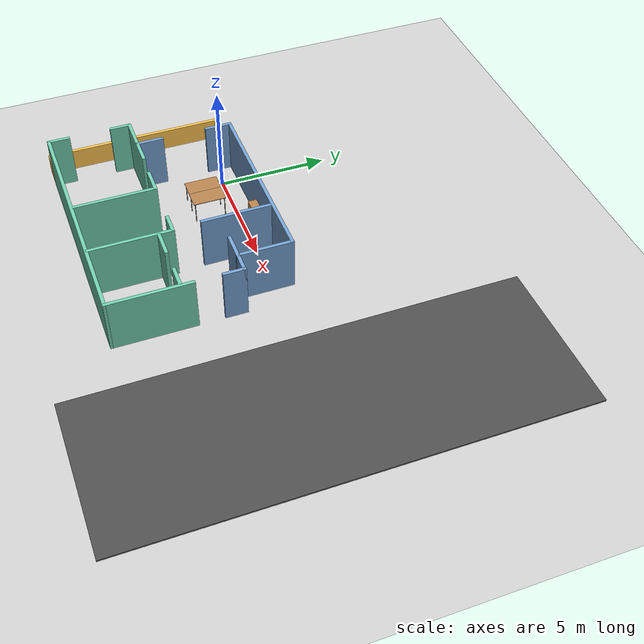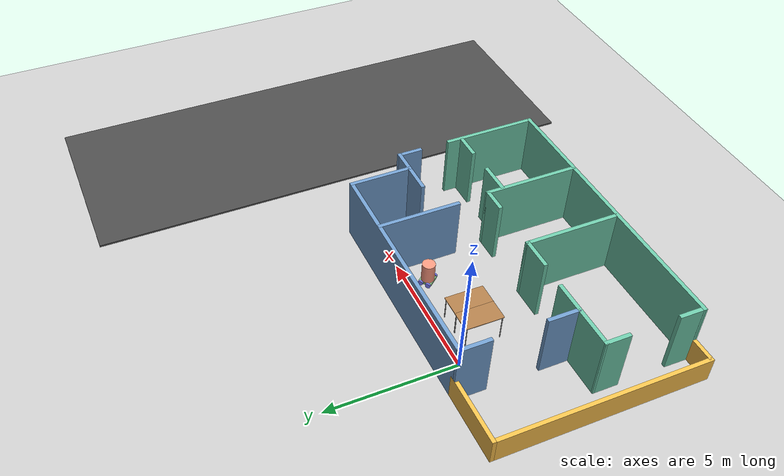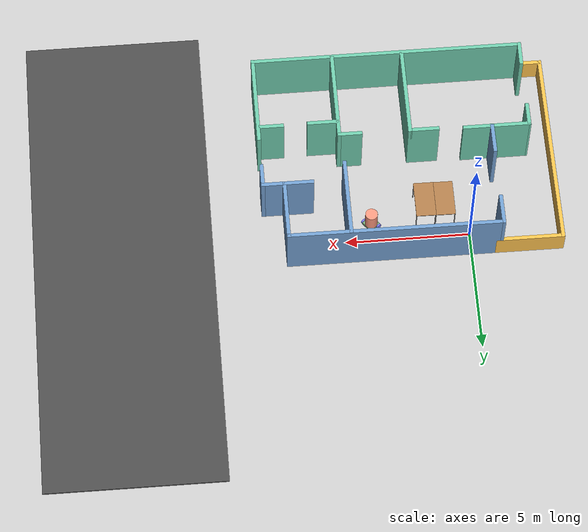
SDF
<sdf version="1.7">
 <world name="default">
  <model name="ground_plane">
   <static>1</static>
   <link name="link">
    <collision name="collision">
     <geometry><plane><normal>0 0 1</normal><size>100 100</size></plane></geometry>
     <surface>
      <contact><collide_bitmask>65535</collide_bitmask></contact>
      <friction><ode><mu>100</mu><mu2>50</mu2></ode></friction>
     </surface>
    </collision>
    <visual name="visual">
     <cast_shadows>0</cast_shadows>
     <geometry><plane><normal>0 0 1</normal><size>100 100</size></plane></geometry>
     <material>
      <script><uri>file://media/materials/scripts/gazebo.material</uri><name>Gazebo/Grey</name></script>
     </material>
    </visual>
   </link>
  </model>
  <model name="Flat">
   <pose>2.29093 -3.22948 0 0 -0 0</pose>
   <link name="Wall_0">
    <collision name="Wall_0_Collision">
     <geometry><box><size>8.5 0.15 2.5</size></box></geometry>
     <pose>0 0 1.25 0 -0 0</pose>
    </collision>
    <visual name="Wall_0_Visual">
     <pose>0 0 1.25 0 -0 0</pose>
     <geometry><box><size>8.5 0.15 2.5</size></box></geometry>
     <material>
      <script><uri>file://media/materials/scripts/gazebo.material</uri><name>Gazebo/Grey</name></script>
      <ambient>0.447059 0.623529 0.811765 1</ambient>
     </material>
     <meta><layer>0</layer></meta>
    </visual>
    <pose>0.870433 4.05105 0 0 -0 0</pose>
   </link>
   <link name="Wall_1">
    <collision name="Wall_1_Collision">
     <geometry><box><size>2.5 0.15 2.5</size></box></geometry>
     <pose>0 0 1.25 0 -0 0</pose>
    </collision>
    <visual name="Wall_1_Visual">
     <pose>0 0 1.25 0 -0 0</pose>
     <geometry><box><size>2.5 0.15 2.5</size></box></geometry>
     <material>
      <script><uri>file://media/materials/scripts/gazebo.material</uri><name>Gazebo/Grey</name></script>
      <ambient>0.447059 0.623529 0.811765 1</ambient>
     </material>
     <meta><layer>0</layer></meta>
    </visual>
    <pose>5.04543 2.87604 0 0 -0 -1.5708</pose>
   </link>
   <link name="Wall_14">
    <collision name="Wall_14_Collision">
     <geometry><box><size>3.75 0.15 2.5</size></box></geometry>
     <pose>0 0 1.25 0 -0 0</pose>
    </collision>
    <visual name="Wall_14_Visual">
     <pose>0 0 1.25 0 -0 0</pose>
     <geometry><box><size>3.75 0.15 2.5</size></box></geometry>
     <material>
      <script><uri>file://media/materials/scripts/gazebo.material</uri><name>Gazebo/Grey</name></script>
      <ambient>0.435294 0.796078 0.67451 1</ambient>
     </material>
     <meta><layer>0</layer></meta>
    </visual>
    <pose>5.90427 -2.22379 0 0 -0 -1.5708</pose>
   </link>
   <link name="Wall_15">
    <collision name="Wall_15_Collision">
     <geometry><box><size>11.0131 0.15 2.5</size></box></geometry>
     <pose>0 0 1.25 0 -0 0</pose>
    </collision>
    <visual name="Wall_15_Visual">
     <pose>0 0 1.25 0 -0 0</pose>
     <geometry><box><size>11.0131 0.15 2.5</size></box></geometry>
     <material>
      <script><uri>file://media/materials/scripts/gazebo.material</uri><name>Gazebo/Grey</name></script>
      <ambient>0.435294 0.796078 0.67451 1</ambient>
     </material>
     <meta><layer>0</layer></meta>
    </visual>
    <pose>0.472849 -4.03687 0 0 -0 -3.13918</pose>
   </link>
   <link name="Wall_16">
    <collision name="Wall_16_Collision">
     <geometry><box><size>1.02626 0.15 2.5</size></box></geometry>
     <pose>0 0 1.25 0 -0 0</pose>
    </collision>
    <visual name="Wall_16_Visual">
     <pose>0 0 1.25 0 -0 0</pose>
     <geometry><box><size>1.02626 0.15 2.5</size></box></geometry>
     <material>
      <script><uri>file://media/materials/scripts/gazebo.material</uri><name>Gazebo/Grey</name></script>
      <ambient>0.435294 0.796078 0.67451 1</ambient>
     </material>
     <meta><layer>0</layer></meta>
    </visual>
    <pose>-4.95215 -3.61187 0 0 -0 1.55615</pose>
   </link>
   <link name="Wall_18">
    <collision name="Wall_18_Collision">
     <geometry><box><size>0.992854 0.15 2.5</size></box></geometry>
     <pose>0 0 1.25 0 -0 0</pose>
    </collision>
    <visual name="Wall_18_Visual">
     <pose>0 0 1.25 0 -0 0</pose>
     <geometry><box><size>0.992854 0.15 2.5</size></box></geometry>
     <material>
      <script><uri>file://media/materials/scripts/gazebo.material</uri><name>Gazebo/Grey</name></script>
      <ambient>0.435294 0.796078 0.67451 1</ambient>
     </material>
     <meta><layer>0</layer></meta>
    </visual>
    <pose>-4.94342 -0.738786 0 0 -0 1.56763</pose>
   </link>
   <link name="Wall_19">
    <collision name="Wall_19_Collision">
     <geometry><box><size>2.74734 0.15 2.5</size></box></geometry>
     <pose>0 0 1.25 0 -0 0</pose>
    </collision>
    <visual name="Wall_19_Visual">
     <pose>0 0 1.25 0 -0 0</pose>
     <geometry><box><size>2.74734 0.15 2.5</size></box></geometry>
     <material>
      <script><uri>file://media/materials/scripts/gazebo.material</uri><name>Gazebo/Grey</name></script>
      <ambient>0.435294 0.796078 0.67451 1</ambient>
     </material>
     <meta><layer>0</layer></meta>
    </visual>
    <pose>-3.64342 -0.313786 0 0 -0 0.002753</pose>
   </link>
   <link name="Wall_2">
    <collision name="Wall_2_Collision">
     <geometry><box><size>1 0.15 2.5</size></box></geometry>
     <pose>0 0 1.25 0 -0 0</pose>
    </collision>
    <visual name="Wall_2_Visual">
     <pose>0 0 1.25 0 -0 0</pose>
     <geometry><box><size>1 0.15 2.5</size></box></geometry>
     <material>
      <script><uri>file://media/materials/scripts/gazebo.material</uri><name>Gazebo/Grey</name></script>
      <ambient>0.447059 0.623529 0.811765 1</ambient>
     </material>
     <meta><layer>0</layer></meta>
    </visual>
    <pose>5.47043 1.70104 0 0 -0 0</pose>
   </link>
   <link name="Wall_21">
    <collision name="Wall_21_Collision">
     <geometry><box><size>1.25 0.15 2.5</size></box></geometry>
     <pose>0 0 1.25 0 -0 0</pose>
    </collision>
    <visual name="Wall_21_Visual">
     <pose>0 0 1.25 0 -0 0</pose>
     <geometry><box><size>1.25 0.15 2.5</size></box></geometry>
     <material>
      <script><uri>file://media/materials/scripts/gazebo.material</uri><name>Gazebo/Grey</name></script>
      <ambient>0.435294 0.796078 0.67451 1</ambient>
     </material>
     <meta><layer>0</layer></meta>
    </visual>
    <pose>-0.699511 -0.358041 0 0 -0 0</pose>
   </link>
   <link name="Wall_22">
    <collision name="Wall_22_Collision">
     <geometry><box><size>3.75 0.15 2.5</size></box></geometry>
     <pose>0 0 1.25 0 -0 0</pose>
    </collision>
    <visual name="Wall_22_Visual">
     <pose>0 0 1.25 0 -0 0</pose>
     <geometry><box><size>3.75 0.15 2.5</size></box></geometry>
     <material>
      <script><uri>file://media/materials/scripts/gazebo.material</uri><name>Gazebo/Grey</name></script>
      <ambient>0.435294 0.796078 0.67451 1</ambient>
     </material>
     <meta><layer>0</layer></meta>
    </visual>
    <pose>-0.149511 -2.15804 0 0 -0 -1.5708</pose>
   </link>
   <link name="Wall_24">
    <collision name="Wall_24_Collision">
     <geometry><box><size>1 0.15 2.5</size></box></geometry>
     <pose>0 0 1.25 0 -0 0</pose>
    </collision>
    <visual name="Wall_24_Visual">
     <pose>0 0 1.25 0 -0 0</pose>
     <geometry><box><size>1 0.15 2.5</size></box></geometry>
     <material>
      <script><uri>file://media/materials/scripts/gazebo.material</uri><name>Gazebo/Grey</name></script>
      <ambient>0.435294 0.796078 0.67451 1</ambient>
     </material>
     <meta><layer>0</layer></meta>
    </visual>
    <pose>2.26581 -0.371191 0 0 -0 0</pose>
   </link>
   <link name="Wall_25">
    <collision name="Wall_25_Collision">
     <geometry><box><size>3.75 0.15 2.5</size></box></geometry>
     <pose>0 0 1.25 0 -0 0</pose>
    </collision>
    <visual name="Wall_25_Visual">
     <pose>0 0 1.25 0 -0 0</pose>
     <geometry><box><size>3.75 0.15 2.5</size></box></geometry>
     <material>
      <script><uri>file://media/materials/scripts/gazebo.material</uri><name>Gazebo/Grey</name></script>
      <ambient>0.435294 0.796078 0.67451 1</ambient>
     </material>
     <meta><layer>0</layer></meta>
    </visual>
    <pose>2.69082 -2.17119 0 0 -0 -1.5708</pose>
   </link>
   <link name="Wall_27">
    <collision name="Wall_27_Collision">
     <geometry><box><size>1.25 0.15 2.5</size></box></geometry>
     <pose>0 0 1.25 0 -0 0</pose>
    </collision>
    <visual name="Wall_27_Visual">
     <pose>0 0 1.25 0 -0 0</pose>
     <geometry><box><size>1.25 0.15 2.5</size></box></geometry>
     <material>
      <script><uri>file://media/materials/scripts/gazebo.material</uri><name>Gazebo/Grey</name></script>
      <ambient>0.435294 0.796078 0.67451 1</ambient>
     </material>
     <meta><layer>0</layer></meta>
    </visual>
    <pose>3.31134 -0.976106 0 0 -0 0</pose>
   </link>
   <link name="Wall_29">
    <collision name="Wall_29_Collision">
     <geometry><box><size>1 0.15 2.5</size></box></geometry>
     <pose>0 0 1.25 0 -0 0</pose>
    </collision>
    <visual name="Wall_29_Visual">
     <pose>0 0 1.25 0 -0 0</pose>
     <geometry><box><size>1 0.15 2.5</size></box></geometry>
     <material>
      <script><uri>file://media/materials/scripts/gazebo.material</uri><name>Gazebo/Grey</name></script>
      <ambient>0.435294 0.796078 0.67451 1</ambient>
     </material>
     <meta><layer>0</layer></meta>
    </visual>
    <pose>5.36929 -0.949805 0 0 -0 0</pose>
   </link>
   <link name="Wall_3">
    <collision name="Wall_3_Collision">
     <geometry><box><size>1 0.15 2.5</size></box></geometry>
     <pose>0 0 1.25 0 -0 0</pose>
    </collision>
    <visual name="Wall_3_Visual">
     <pose>0 0 1.25 0 -0 0</pose>
     <geometry><box><size>1 0.15 2.5</size></box></geometry>
     <material>
      <script><uri>file://media/materials/scripts/gazebo.material</uri><name>Gazebo/Grey</name></script>
      <ambient>0.447059 0.623529 0.811765 1</ambient>
     </material>
     <meta><layer>0</layer></meta>
    </visual>
    <pose>5.89543 1.27605 0 0 -0 -1.5708</pose>
   </link>
   <link name="Wall_33">
    <collision name="Wall_33_Collision">
     <geometry><box><size>3.25 0.15 2.5</size></box></geometry>
     <pose>0 0 1.25 0 -0 0</pose>
    </collision>
    <visual name="Wall_33_Visual">
     <pose>0 0 1.25 0 -0 0</pose>
     <geometry><box><size>3.25 0.15 2.5</size></box></geometry>
     <material>
      <script><uri>file://media/materials/scripts/gazebo.material</uri><name>Gazebo/Grey</name></script>
      <ambient>0.447059 0.623529 0.811765 1</ambient>
     </material>
     <meta><layer>0</layer></meta>
    </visual>
    <pose>2.59038 2.48417 0 0 -0 -1.5708</pose>
   </link>
   <link name="Wall_36">
    <collision name="Wall_36_Collision">
     <geometry><box><size>1.25 0.15 2.5</size></box></geometry>
     <pose>0 0 1.25 0 -0 0</pose>
    </collision>
    <visual name="Wall_36_Visual">
     <pose>0 0 1.25 0 -0 0</pose>
     <geometry><box><size>1.25 0.15 2.5</size></box></geometry>
     <material>
      <script><uri>file://media/materials/scripts/gazebo.material</uri><name>Gazebo/Grey</name></script>
      <ambient>0.447059 0.623529 0.811765 1</ambient>
     </material>
     <meta><layer>0</layer></meta>
    </visual>
    <pose>4.49558 1.70105 0 0 -0 3.14158</pose>
   </link>
   <link name="Wall_38">
    <collision name="Wall_38_Collision">
     <geometry><box><size>1.25 0.15 2.5</size></box></geometry>
     <pose>0 0 1.25 0 -0 0</pose>
    </collision>
    <visual name="Wall_38_Visual">
     <pose>0 0 1.25 0 -0 0</pose>
     <geometry><box><size>1.25 0.15 2.5</size></box></geometry>
     <material>
      <script><uri>file://media/materials/scripts/gazebo.material</uri><name>Gazebo/Grey</name></script>
      <ambient>0.447059 0.623529 0.811765 1</ambient>
     </material>
     <meta><layer>0</layer></meta>
    </visual>
    <pose>-3.43247 3.49732 0 0 -0 -1.5708</pose>
   </link>
   <link name="Wall_40">
    <collision name="Wall_40_Collision">
     <geometry><box><size>1.25 0.15 2.5</size></box></geometry>
     <pose>0 0 1.25 0 -0 0</pose>
    </collision>
    <visual name="Wall_40_Visual">
     <pose>0 0 1.25 0 -0 0</pose>
     <geometry><box><size>1.25 0.15 2.5</size></box></geometry>
     <material>
      <script><uri>file://media/materials/scripts/gazebo.material</uri><name>Gazebo/Grey</name></script>
      <ambient>0.447059 0.623529 0.811765 1</ambient>
     </material>
     <meta><layer>0</layer></meta>
    </visual>
    <pose>-3.44562 0.262338 0 0 -0 -1.5708</pose>
   </link>
   <link name="Wall_42">
    <collision name="Wall_42_Collision">
     <geometry><box><size>2.75 0.15 1</size></box></geometry>
     <pose>0 0 0.5 0 -0 0</pose>
    </collision>
    <visual name="Wall_42_Visual">
     <pose>0 0 0.5 0 -0 0</pose>
     <geometry><box><size>2.75 0.15 1</size></box></geometry>
     <material>
      <script><uri>file://media/materials/scripts/gazebo.material</uri><name>Gazebo/Grey</name></script>
      <ambient>1 0.764706 0.305882 1</ambient>
     </material>
     <meta><layer>0</layer></meta>
    </visual>
    <pose>-4.60457 4.05105 0 0 -0 -3.14159</pose>
   </link>
   <link name="Wall_43">
    <collision name="Wall_43_Collision">
     <geometry><box><size>8.25 0.15 1</size></box></geometry>
     <pose>0 0 0.5 0 -0 0</pose>
    </collision>
    <visual name="Wall_43_Visual">
     <pose>0 0 0.5 0 -0 0</pose>
     <geometry><box><size>8.25 0.15 1</size></box></geometry>
     <material>
      <script><uri>file://media/materials/scripts/gazebo.material</uri><name>Gazebo/Grey</name></script>
      <ambient>1 0.764706 0.305882 1</ambient>
     </material>
     <meta><layer>0</layer></meta>
    </visual>
    <pose>-5.90457 0.001045 0 0 -0 -1.5708</pose>
   </link>
   <link name="Wall_46">
    <collision name="Wall_46_Collision">
     <geometry><box><size>1.09576 0.15 1</size></box></geometry>
     <pose>0 0 0.5 0 -0 0</pose>
    </collision>
    <visual name="Wall_46_Visual">
     <pose>0 0 0.5 0 -0 0</pose>
     <geometry><box><size>1.09576 0.15 1</size></box></geometry>
     <material>
      <script><uri>file://media/materials/scripts/gazebo.material</uri><name>Gazebo/Grey</name></script>
      <ambient>1 0.764706 0.305882 1</ambient>
     </material>
     <meta><layer>0</layer></meta>
    </visual>
    <pose>-5.43157 -4.04946 0 0 -0 -0.001057</pose>
   </link>
   <static>1</static>
  </model>
  <model name="bookshelf">
   <static>1</static>
   <link name="link">
    <inertial><mass>1</mass></inertial>
    <collision name="back">
     <pose>0 0.005 0.6 0 -0 0</pose>
     <geometry><box><size>0.9 0.01 1.2</size></box></geometry>
    </collision>
    <visual name="visual1">
     <pose>0 0.005 0.6 0 -0 0</pose>
     <geometry><box><size>0.9 0.01 1.2</size></box></geometry>
     <material>
      <script><uri>file://media/materials/scripts/gazebo.material</uri><name>Gazebo/Wood</name></script>
     </material>
    </visual>
    <collision name="left_side">
     <pose>0.45 -0.195 0.6 0 -0 0</pose>
     <geometry><box><size>0.02 0.4 1.2</size></box></geometry>
    </collision>
    <visual name="visual2">
     <pose>0.45 -0.195 0.6 0 -0 0</pose>
     <geometry><box><size>0.02 0.4 1.2</size></box></geometry>
     <material>
      <script><uri>file://media/materials/scripts/gazebo.material</uri><name>Gazebo/Wood</name></script>
     </material>
    </visual>
    <collision name="right_side">
     <pose>-0.45 -0.195 0.6 0 -0 0</pose>
     <geometry><box><size>0.02 0.4 1.2</size></box></geometry>
    </collision>
    <visual name="visual3">
     <pose>-0.45 -0.195 0.6 0 -0 0</pose>
     <geometry><box><size>0.02 0.4 1.2</size></box></geometry>
     <material>
      <script><uri>file://media/materials/scripts/gazebo.material</uri><name>Gazebo/Wood</name></script>
     </material>
    </visual>
    <collision name="bottom">
     <pose>0 -0.195 0.03 0 -0 0</pose>
     <geometry><box><size>0.88 0.4 0.06</size></box></geometry>
    </collision>
    <visual name="visual4">
     <pose>0 -0.195 0.03 0 -0 0</pose>
     <geometry><box><size>0.88 0.4 0.06</size></box></geometry>
     <material>
      <script><uri>file://media/materials/scripts/gazebo.material</uri><name>Gazebo/Wood</name></script>
     </material>
    </visual>
    <collision name="top">
     <pose>0 -0.195 1.19 0 -0 0</pose>
     <geometry><box><size>0.88 0.4 0.02</size></box></geometry>
    </collision>
    <visual name="visual5">
     <pose>0 -0.195 1.19 0 -0 0</pose>
     <geometry><box><size>0.88 0.4 0.02</size></box></geometry>
     <material>
      <script><uri>file://media/materials/scripts/gazebo.material</uri><name>Gazebo/Wood</name></script>
     </material>
    </visual>
    <collision name="low_shelf">
     <pose>0 -0.195 0.43 0 -0 0</pose>
     <geometry><box><size>0.88 0.4 0.02</size></box></geometry>
    </collision>
    <visual name="visual6">
     <pose>0 -0.195 0.43 0 -0 0</pose>
     <geometry><box><size>0.88 0.4 0.02</size></box></geometry>
     <material>
      <script><uri>file://media/materials/scripts/gazebo.material</uri><name>Gazebo/Wood</name></script>
     </material>
    </visual>
    <collision name="high_shelf">
     <pose>0 -0.195 0.8 0 -0 0</pose>
     <geometry><box><size>0.88 0.4 0.02</size></box></geometry>
    </collision>
    <visual name="visual7">
     <pose>0 -0.195 0.8 0 -0 0</pose>
     <geometry><box><size>0.88 0.4 0.02</size></box></geometry>
     <material>
      <script><uri>file://media/materials/scripts/gazebo.material</uri><name>Gazebo/Wood</name></script>
     </material>
    </visual>
   </link>
   <pose>4.29732 0.722954 0 0 -0 0</pose>
  </model>
  <model name="table">
   <static>1</static>
   <link name="link">
    <collision name="surface">
     <pose>0 0 1 0 -0 0</pose>
     <geometry><box><size>1.5 0.8 0.03</size></box></geometry>
     <surface><friction><ode><mu>0.6</mu><mu2>0.6</mu2></ode></friction></surface>
    </collision>
    <visual name="visual1">
     <pose>0 0 1 0 -0 0</pose>
     <geometry><box><size>1.5 0.8 0.03</size></box></geometry>
     <material>
      <script><uri>file://media/materials/scripts/gazebo.material</uri><name>Gazebo/Wood</name></script>
     </material>
    </visual>
    <collision name="front_left_leg">
     <pose>0.68 0.38 0.5 0 -0 0</pose>
     <geometry><cylinder><radius>0.02</radius><length>1</length></cylinder></geometry>
    </collision>
    <visual name="front_left_leg">
     <pose>0.68 0.38 0.5 0 -0 0</pose>
     <geometry><cylinder><radius>0.02</radius><length>1</length></cylinder></geometry>
     <material>
      <script><uri>file://media/materials/scripts/gazebo.material</uri><name>Gazebo/Grey</name></script>
     </material>
    </visual>
    <collision name="front_right_leg">
     <pose>0.68 -0.38 0.5 0 -0 0</pose>
     <geometry><cylinder><radius>0.02</radius><length>1</length></cylinder></geometry>
    </collision>
    <visual name="front_right_leg">
     <pose>0.68 -0.38 0.5 0 -0 0</pose>
     <geometry><cylinder><radius>0.02</radius><length>1</length></cylinder></geometry>
     <material>
      <script><uri>file://media/materials/scripts/gazebo.material</uri><name>Gazebo/Grey</name></script>
     </material>
    </visual>
    <collision name="back_right_leg">
     <pose>-0.68 -0.38 0.5 0 -0 0</pose>
     <geometry><cylinder><radius>0.02</radius><length>1</length></cylinder></geometry>
    </collision>
    <visual name="back_right_leg">
     <pose>-0.68 -0.38 0.5 0 -0 0</pose>
     <geometry><cylinder><radius>0.02</radius><length>1</length></cylinder></geometry>
     <material>
      <script><uri>file://media/materials/scripts/gazebo.material</uri><name>Gazebo/Grey</name></script>
     </material>
    </visual>
    <collision name="back_left_leg">
     <pose>-0.68 0.38 0.5 0 -0 0</pose>
     <geometry><cylinder><radius>0.02</radius><length>1</length></cylinder></geometry>
    </collision>
    <visual name="back_left_leg">
     <pose>-0.68 0.38 0.5 0 -0 0</pose>
     <geometry><cylinder><radius>0.02</radius><length>1</length></cylinder></geometry>
     <material>
      <script><uri>file://media/materials/scripts/gazebo.material</uri><name>Gazebo/Grey</name></script>
     </material>
    </visual>
   </link>
   <pose>1.72625 -1.20385 0 0 0 -1.57665</pose>
  </model>
  <model name="asphalt_plane">
   <static>1</static>
   <link name="link">
    <collision name="collision"><geometry><box><size>7.18921 20 0.1</size></box></geometry></collision>
    <visual name="visual">
     <cast_shadows>0</cast_shadows>
     <geometry><box><size>7.18921 20 0.1</size></box></geometry>
     <material>
      <script>
       <uri>model://asphalt_plane/materials/scripts</uri>
       <uri>model://asphalt_plane/materials/textures</uri>
       <name>vrc/asphalt</name>
      </script>
     </material>
    </visual>
   </link>
   <pose>13.9071 -0.010648 0 0 -0 0</pose>
  </model>
  <model name="table_clone">
   <static>1</static>
   <link name="link">
    <collision name="surface">
     <pose>0 0 1 0 -0 0</pose>
     <geometry><box><size>1.5 0.8 0.03</size></box></geometry>
     <surface><friction><ode><mu>0.6</mu><mu2>0.6</mu2></ode></friction></surface>
    </collision>
    <visual name="visual1">
     <pose>0 0 1 0 -0 0</pose>
     <geometry><box><size>1.5 0.8 0.03</size></box></geometry>
     <material>
      <script><uri>file://media/materials/scripts/gazebo.material</uri><name>Gazebo/Wood</name></script>
     </material>
    </visual>
    <collision name="front_left_leg">
     <pose>0.68 0.38 0.5 0 -0 0</pose>
     <geometry><cylinder><radius>0.02</radius><length>1</length></cylinder></geometry>
    </collision>
    <visual name="front_left_leg">
     <pose>0.68 0.38 0.5 0 -0 0</pose>
     <geometry><cylinder><radius>0.02</radius><length>1</length></cylinder></geometry>
     <material>
      <script><uri>file://media/materials/scripts/gazebo.material</uri><name>Gazebo/Grey</name></script>
     </material>
    </visual>
    <collision name="front_right_leg">
     <pose>0.68 -0.38 0.5 0 -0 0</pose>
     <geometry><cylinder><radius>0.02</radius><length>1</length></cylinder></geometry>
    </collision>
    <visual name="front_right_leg">
     <pose>0.68 -0.38 0.5 0 -0 0</pose>
     <geometry><cylinder><radius>0.02</radius><length>1</length></cylinder></geometry>
     <material>
      <script><uri>file://media/materials/scripts/gazebo.material</uri><name>Gazebo/Grey</name></script>
     </material>
    </visual>
    <collision name="back_right_leg">
     <pose>-0.68 -0.38 0.5 0 -0 0</pose>
     <geometry><cylinder><radius>0.02</radius><length>1</length></cylinder></geometry>
    </collision>
    <visual name="back_right_leg">
     <pose>-0.68 -0.38 0.5 0 -0 0</pose>
     <geometry><cylinder><radius>0.02</radius><length>1</length></cylinder></geometry>
     <material>
      <script><uri>file://media/materials/scripts/gazebo.material</uri><name>Gazebo/Grey</name></script>
     </material>
    </visual>
    <collision name="back_left_leg">
     <pose>-0.68 0.38 0.5 0 -0 0</pose>
     <geometry><cylinder><radius>0.02</radius><length>1</length></cylinder></geometry>
    </collision>
    <visual name="back_left_leg">
     <pose>-0.68 0.38 0.5 0 -0 0</pose>
     <geometry><cylinder><radius>0.02</radius><length>1</length></cylinder></geometry>
     <material>
      <script><uri>file://media/materials/scripts/gazebo.material</uri><name>Gazebo/Grey</name></script>
     </material>
    </visual>
   </link>
   <pose>0.949263 -1.19501 0 0 0 -1.57665</pose>
  </model>
  <model name="bookshelf_clone">
   <static>1</static>
   <link name="link">
    <inertial><mass>1</mass></inertial>
    <collision name="back">
     <pose>0 0.005 0.6 0 -0 0</pose>
     <geometry><box><size>0.9 0.01 1.2</size></box></geometry>
    </collision>
    <visual name="visual1">
     <pose>0 0.005 0.6 0 -0 0</pose>
     <geometry><box><size>0.9 0.01 1.2</size></box></geometry>
     <material>
      <script><uri>file://media/materials/scripts/gazebo.material</uri><name>Gazebo/Wood</name></script>
     </material>
    </visual>
    <collision name="left_side">
     <pose>0.45 -0.195 0.6 0 -0 0</pose>
     <geometry><box><size>0.02 0.4 1.2</size></box></geometry>
    </collision>
    <visual name="visual2">
     <pose>0.45 -0.195 0.6 0 -0 0</pose>
     <geometry><box><size>0.02 0.4 1.2</size></box></geometry>
     <material>
      <script><uri>file://media/materials/scripts/gazebo.material</uri><name>Gazebo/Wood</name></script>
     </material>
    </visual>
    <collision name="right_side">
     <pose>-0.45 -0.195 0.6 0 -0 0</pose>
     <geometry><box><size>0.02 0.4 1.2</size></box></geometry>
    </collision>
    <visual name="visual3">
     <pose>-0.45 -0.195 0.6 0 -0 0</pose>
     <geometry><box><size>0.02 0.4 1.2</size></box></geometry>
     <material>
      <script><uri>file://media/materials/scripts/gazebo.material</uri><name>Gazebo/Wood</name></script>
     </material>
    </visual>
    <collision name="bottom">
     <pose>0 -0.195 0.03 0 -0 0</pose>
     <geometry><box><size>0.88 0.4 0.06</size></box></geometry>
    </collision>
    <visual name="visual4">
     <pose>0 -0.195 0.03 0 -0 0</pose>
     <geometry><box><size>0.88 0.4 0.06</size></box></geometry>
     <material>
      <script><uri>file://media/materials/scripts/gazebo.material</uri><name>Gazebo/Wood</name></script>
     </material>
    </visual>
    <collision name="top">
     <pose>0 -0.195 1.19 0 -0 0</pose>
     <geometry><box><size>0.88 0.4 0.02</size></box></geometry>
    </collision>
    <visual name="visual5">
     <pose>0 -0.195 1.19 0 -0 0</pose>
     <geometry><box><size>0.88 0.4 0.02</size></box></geometry>
     <material>
      <script><uri>file://media/materials/scripts/gazebo.material</uri><name>Gazebo/Wood</name></script>
     </material>
    </visual>
    <collision name="low_shelf">
     <pose>0 -0.195 0.43 0 -0 0</pose>
     <geometry><box><size>0.88 0.4 0.02</size></box></geometry>
    </collision>
    <visual name="visual6">
     <pose>0 -0.195 0.43 0 -0 0</pose>
     <geometry><box><size>0.88 0.4 0.02</size></box></geometry>
     <material>
      <script><uri>file://media/materials/scripts/gazebo.material</uri><name>Gazebo/Wood</name></script>
     </material>
    </visual>
    <collision name="high_shelf">
     <pose>0 -0.195 0.8 0 -0 0</pose>
     <geometry><box><size>0.88 0.4 0.02</size></box></geometry>
    </collision>
    <visual name="visual7">
     <pose>0 -0.195 0.8 0 -0 0</pose>
     <geometry><box><size>0.88 0.4 0.02</size></box></geometry>
     <material>
      <script><uri>file://media/materials/scripts/gazebo.material</uri><name>Gazebo/Wood</name></script>
     </material>
    </visual>
   </link>
   <pose>3.37983 0.715936 0 0 -0 0</pose>
  </model>
  <model name="ServiceRobot_clone">
   <link name="link_0">
    <inertial>
     <mass>5</mass>
     <inertia>
      <ixx>0.108333</ixx>
      <ixy>0</ixy>
      <ixz>0</ixz>
      <iyy>0.108333</iyy>
      <iyz>0</iyz>
      <izz>0.208333</izz>
     </inertia>
    </inertial>
    <pose>0 1e-06 -0.062498 0 -0 0</pose>
    <visual name="visual">
     <geometry><box><size>0.5 0.5 0.1</size></box></geometry>
     <material>
      <lighting>1</lighting>
      <script><uri>file://media/materials/scripts/gazebo.material</uri><name>Gazebo/Grey</name></script>
      <shader type="pixel"><normal_map>__default__</normal_map></shader>
      <ambient>0.3 1 0.3 1</ambient>
      <diffuse>0.5 0.7 0.5 1</diffuse>
      <specular>0.01 0.01 0.01 1</specular>
      <emissive>0 0 0 1</emissive>
     </material>
    </visual>
    <collision name="collision">
     <geometry><box><size>0.5 0.5 0.1</size></box></geometry>
     <surface>
      <friction>
       <ode><mu>1</mu><mu2>1</mu2><fdir1>0 0 0</fdir1><slip1>0</slip1><slip2>0</slip2></ode>
       <torsional>
        <coefficient>1</coefficient>
        <patch_radius>0</patch_radius>
        <surface_radius>0</surface_radius>
        <use_patch_radius>1</use_patch_radius>
        <ode><slip>0</slip></ode>
       </torsional>
      </friction>
      <bounce><restitution_coefficient>0</restitution_coefficient><threshold>1e+06</threshold></bounce>
      <contact>
       <collide_without_contact>0</collide_without_contact>
       <collide_without_contact_bitmask>1</collide_without_contact_bitmask>
       <collide_bitmask>1</collide_bitmask>
       <ode>
        <soft_cfm>0</soft_cfm>
        <soft_erp>0.2</soft_erp>
        <kp>1e+13</kp>
        <kd>1</kd>
        <max_vel>0.01</max_vel>
        <min_depth>0</min_depth>
       </ode>
       <bullet>
        <split_impulse>1</split_impulse>
        <split_impulse_penetration_threshold>-0.01</split_impulse_penetration_threshold>
        <soft_cfm>0</soft_cfm>
        <soft_erp>0.2</soft_erp>
        <kp>1e+13</kp>
        <kd>1</kd>
       </bullet>
      </contact>
     </surface>
    </collision>
   </link>
   <link name="link_1">
    <inertial>
     <mass>5</mass>
     <inertia><ixx>0.729167</ixx><ixy>0</ixy><ixz>0</ixz><iyy>0.729167</iyy><iyz>0</iyz><izz>0.625</izz></inertia>
    </inertial>
    <pose>0 1e-06 0.312502 0 -0 0</pose>
    <visual name="visual">
     <geometry><cylinder><radius>0.25</radius><length>0.85</length></cylinder></geometry>
     <material>
      <lighting>1</lighting>
      <script><uri>file://media/materials/scripts/gazebo.material</uri><name>Gazebo/Grey</name></script>
      <shader type="pixel"><normal_map>__default__</normal_map></shader>
      <ambient>1 0.3 0.3 1</ambient>
      <diffuse>1 0.6 0.5 1</diffuse>
      <specular>0.01 0.01 0.01 1</specular>
      <emissive>0 0 0 1</emissive>
     </material>
    </visual>
    <collision name="collision">
     <geometry><cylinder><radius>0.25</radius><length>0.85</length></cylinder></geometry>
     <surface>
      <friction>
       <ode><mu>1</mu><mu2>1</mu2><fdir1>0 0 0</fdir1><slip1>0</slip1><slip2>0</slip2></ode>
       <torsional>
        <coefficient>1</coefficient>
        <patch_radius>0</patch_radius>
        <surface_radius>0</surface_radius>
        <use_patch_radius>1</use_patch_radius>
        <ode><slip>0</slip></ode>
       </torsional>
      </friction>
      <bounce><restitution_coefficient>0</restitution_coefficient><threshold>1e+06</threshold></bounce>
      <contact>
       <collide_without_contact>0</collide_without_contact>
       <collide_without_contact_bitmask>1</collide_without_contact_bitmask>
       <collide_bitmask>1</collide_bitmask>
       <ode>
        <soft_cfm>0</soft_cfm>
        <soft_erp>0.2</soft_erp>
        <kp>1e+13</kp>
        <kd>1</kd>
        <max_vel>0.01</max_vel>
        <min_depth>0</min_depth>
       </ode>
       <bullet>
        <split_impulse>1</split_impulse>
        <split_impulse_penetration_threshold>-0.01</split_impulse_penetration_threshold>
        <soft_cfm>0</soft_cfm>
        <soft_erp>0.2</soft_erp>
        <kp>1e+13</kp>
        <kd>1</kd>
       </bullet>
      </contact>
     </surface>
    </collision>
   </link>
   <link name="link_2">
    <inertial>
     <mass>1</mass>
     <inertia><ixx>0.145833</ixx><ixy>0</ixy><ixz>0</ixz><iyy>0.145833</iyy><iyz>0</iyz><izz>0.125</izz></inertia>
    </inertial>
    <pose>-0.15 -0.287513 -0.062511 1.5707 -0 0</pose>
    <visual name="visual">
     <geometry><cylinder><radius>0.1</radius><length>0.075</length></cylinder></geometry>
     <material>
      <lighting>1</lighting>
      <script><uri>file://media/materials/scripts/gazebo.material</uri><name>Gazebo/Grey</name></script>
      <shader type="pixel"><normal_map>__default__</normal_map></shader>
      <ambient>0.3 0.3 1 1</ambient>
      <diffuse>0.5 0.5 1 1</diffuse>
      <specular>0.01 0.01 0.01 1</specular>
      <emissive>0 0 0 1</emissive>
     </material>
    </visual>
    <collision name="collision">
     <geometry><cylinder><radius>0.1</radius><length>0.075</length></cylinder></geometry>
     <surface>
      <friction>
       <ode><mu>1</mu><mu2>1</mu2><fdir1>0 0 0</fdir1><slip1>0</slip1><slip2>0</slip2></ode>
       <torsional>
        <coefficient>1</coefficient>
        <patch_radius>0</patch_radius>
        <surface_radius>0</surface_radius>
        <use_patch_radius>1</use_patch_radius>
        <ode><slip>0</slip></ode>
       </torsional>
      </friction>
      <bounce><restitution_coefficient>0</restitution_coefficient><threshold>1e+06</threshold></bounce>
      <contact>
       <collide_without_contact>0</collide_without_contact>
       <collide_without_contact_bitmask>1</collide_without_contact_bitmask>
       <collide_bitmask>1</collide_bitmask>
       <ode>
        <soft_cfm>0</soft_cfm>
        <soft_erp>0.2</soft_erp>
        <kp>1e+13</kp>
        <kd>1</kd>
        <max_vel>0.01</max_vel>
        <min_depth>0</min_depth>
       </ode>
       <bullet>
        <split_impulse>1</split_impulse>
        <split_impulse_penetration_threshold>-0.01</split_impulse_penetration_threshold>
        <soft_cfm>0</soft_cfm>
        <soft_erp>0.2</soft_erp>
        <kp>1e+13</kp>
        <kd>1</kd>
       </bullet>
      </contact>
     </surface>
    </collision>
   </link>
   <link name="link_2_clone">
    <inertial>
     <mass>1</mass>
     <inertia><ixx>0.145833</ixx><ixy>0</ixy><ixz>0</ixz><iyy>0.145833</iyy><iyz>0</iyz><izz>0.125</izz></inertia>
    </inertial>
    <pose>0.15 -0.287509 -0.062498 1.5707 -0 0</pose>
    <visual name="visual">
     <geometry><cylinder><radius>0.1</radius><length>0.075</length></cylinder></geometry>
     <material>
      <lighting>1</lighting>
      <script><uri>file://media/materials/scripts/gazebo.material</uri><name>Gazebo/Grey</name></script>
      <shader type="pixel"><normal_map>__default__</normal_map></shader>
      <ambient>0.3 0.3 1 1</ambient>
      <diffuse>0.5 0.5 1 1</diffuse>
      <specular>0.01 0.01 0.01 1</specular>
      <emissive>0 0 0 1</emissive>
     </material>
    </visual>
    <collision name="collision">
     <geometry><cylinder><radius>0.1</radius><length>0.075</length></cylinder></geometry>
     <surface>
      <friction>
       <ode><mu>1</mu><mu2>1</mu2><fdir1>0 0 0</fdir1><slip1>0</slip1><slip2>0</slip2></ode>
       <torsional>
        <coefficient>1</coefficient>
        <patch_radius>0</patch_radius>
        <surface_radius>0</surface_radius>
        <use_patch_radius>1</use_patch_radius>
        <ode><slip>0</slip></ode>
       </torsional>
      </friction>
      <bounce><restitution_coefficient>0</restitution_coefficient><threshold>1e+06</threshold></bounce>
      <contact>
       <collide_without_contact>0</collide_without_contact>
       <collide_without_contact_bitmask>1</collide_without_contact_bitmask>
       <collide_bitmask>1</collide_bitmask>
       <ode>
        <soft_cfm>0</soft_cfm>
        <soft_erp>0.2</soft_erp>
        <kp>1e+13</kp>
        <kd>1</kd>
        <max_vel>0.01</max_vel>
        <min_depth>0</min_depth>
       </ode>
       <bullet>
        <split_impulse>1</split_impulse>
        <split_impulse_penetration_threshold>-0.01</split_impulse_penetration_threshold>
        <soft_cfm>0</soft_cfm>
        <soft_erp>0.2</soft_erp>
        <kp>1e+13</kp>
        <kd>1</kd>
       </bullet>
      </contact>
     </surface>
    </collision>
   </link>
   <link name="link_2_clone_0">
    <inertial>
     <mass>1</mass>
     <inertia><ixx>0.145833</ixx><ixy>0</ixy><ixz>0</ixz><iyy>0.145833</iyy><iyz>0</iyz><izz>0.125</izz></inertia>
    </inertial>
    <pose>0.15 0.28751 -0.062498 1.5707 -0 0</pose>
    <visual name="visual">
     <geometry><cylinder><radius>0.1</radius><length>0.075</length></cylinder></geometry>
     <material>
      <lighting>1</lighting>
      <script><uri>file://media/materials/scripts/gazebo.material</uri><name>Gazebo/Grey</name></script>
      <shader type="pixel"><normal_map>__default__</normal_map></shader>
      <ambient>0.3 0.3 1 1</ambient>
      <diffuse>0.5 0.5 1 1</diffuse>
      <specular>0.01 0.01 0.01 1</specular>
      <emissive>0 0 0 1</emissive>
     </material>
    </visual>
    <collision name="collision">
     <geometry><cylinder><radius>0.1</radius><length>0.075</length></cylinder></geometry>
     <surface>
      <friction>
       <ode><mu>1</mu><mu2>1</mu2><fdir1>0 0 0</fdir1><slip1>0</slip1><slip2>0</slip2></ode>
       <torsional>
        <coefficient>1</coefficient>
        <patch_radius>0</patch_radius>
        <surface_radius>0</surface_radius>
        <use_patch_radius>1</use_patch_radius>
        <ode><slip>0</slip></ode>
       </torsional>
      </friction>
      <bounce><restitution_coefficient>0</restitution_coefficient><threshold>1e+06</threshold></bounce>
      <contact>
       <collide_without_contact>0</collide_without_contact>
       <collide_without_contact_bitmask>1</collide_without_contact_bitmask>
       <collide_bitmask>1</collide_bitmask>
       <ode>
        <soft_cfm>0</soft_cfm>
        <soft_erp>0.2</soft_erp>
        <kp>1e+13</kp>
        <kd>1</kd>
        <max_vel>0.01</max_vel>
        <min_depth>0</min_depth>
       </ode>
       <bullet>
        <split_impulse>1</split_impulse>
        <split_impulse_penetration_threshold>-0.01</split_impulse_penetration_threshold>
        <soft_cfm>0</soft_cfm>
        <soft_erp>0.2</soft_erp>
        <kp>1e+13</kp>
        <kd>1</kd>
       </bullet>
      </contact>
     </surface>
    </collision>
   </link>
   <link name="link_2_clone_1">
    <inertial>
     <mass>1</mass>
     <inertia><ixx>0.145833</ixx><ixy>0</ixy><ixz>0</ixz><iyy>0.145833</iyy><iyz>0</iyz><izz>0.125</izz></inertia>
    </inertial>
    <pose>-0.15 0.28751 -0.062498 1.5707 -0 0</pose>
    <visual name="visual">
     <geometry><cylinder><radius>0.1</radius><length>0.075</length></cylinder></geometry>
     <material>
      <lighting>1</lighting>
      <script><uri>file://media/materials/scripts/gazebo.material</uri><name>Gazebo/Grey</name></script>
      <shader type="pixel"><normal_map>__default__</normal_map></shader>
      <ambient>0.3 0.3 1 1</ambient>
      <diffuse>0.5 0.5 1 1</diffuse>
      <specular>0.01 0.01 0.01 1</specular>
      <emissive>0 0 0 1</emissive>
     </material>
    </visual>
    <collision name="collision">
     <geometry><cylinder><radius>0.1</radius><length>0.075</length></cylinder></geometry>
     <surface>
      <friction>
       <ode><mu>1</mu><mu2>1</mu2><fdir1>0 0 0</fdir1><slip1>0</slip1><slip2>0</slip2></ode>
       <torsional>
        <coefficient>1</coefficient>
        <patch_radius>0</patch_radius>
        <surface_radius>0</surface_radius>
        <use_patch_radius>1</use_patch_radius>
        <ode><slip>0</slip></ode>
       </torsional>
      </friction>
      <bounce><restitution_coefficient>0</restitution_coefficient><threshold>1e+06</threshold></bounce>
      <contact>
       <collide_without_contact>0</collide_without_contact>
       <collide_without_contact_bitmask>1</collide_without_contact_bitmask>
       <collide_bitmask>1</collide_bitmask>
       <ode>
        <soft_cfm>0</soft_cfm>
        <soft_erp>0.2</soft_erp>
        <kp>1e+13</kp>
        <kd>1</kd>
        <max_vel>0.01</max_vel>
        <min_depth>0</min_depth>
       </ode>
       <bullet>
        <split_impulse>1</split_impulse>
        <split_impulse_penetration_threshold>-0.01</split_impulse_penetration_threshold>
        <soft_cfm>0</soft_cfm>
        <soft_erp>0.2</soft_erp>
        <kp>1e+13</kp>
        <kd>1</kd>
       </bullet>
      </contact>
     </surface>
    </collision>
   </link>
   <joint name="link_0_JOINT_0" type="fixed">
    <parent>link_0</parent>
    <child>link_1</child>
    <physics>
     <ode><limit><cfm>0</cfm><erp>0.2</erp></limit><suspension><cfm>0</cfm><erp>0.2</erp></suspension></ode>
    </physics>
   </joint>
   <joint name="link_0_JOINT_1" type="revolute">
    <parent>link_0</parent>
    <child>link_2</child>
    <axis>
     <xyz>0 0 1</xyz>
     <limit>
      <lower>-1.79769e+308</lower>
      <upper>1.79769e+308</upper>
      <effort>-1</effort>
      <velocity>-1</velocity>
     </limit>
     <dynamics>
      <spring_reference>0</spring_reference>
      <spring_stiffness>0</spring_stiffness>
      <damping>0</damping>
      <friction>0</friction>
     </dynamics>
    </axis>
    <physics>
     <ode><limit><cfm>0</cfm><erp>0.2</erp></limit><suspension><cfm>0</cfm><erp>0.2</erp></suspension></ode>
    </physics>
   </joint>
   <joint name="link_0_JOINT_4" type="revolute">
    <parent>link_0</parent>
    <child>link_2_clone</child>
    <axis>
     <xyz>0 0 1</xyz>
     <limit>
      <lower>-1.79769e+308</lower>
      <upper>1.79769e+308</upper>
      <effort>-1</effort>
      <velocity>-1</velocity>
     </limit>
     <dynamics>
      <spring_reference>0</spring_reference>
      <spring_stiffness>0</spring_stiffness>
      <damping>0</damping>
      <friction>0</friction>
     </dynamics>
    </axis>
    <physics>
     <ode><limit><cfm>0</cfm><erp>0.2</erp></limit><suspension><cfm>0</cfm><erp>0.2</erp></suspension></ode>
    </physics>
   </joint>
   <joint name="link_0_JOINT_5" type="revolute">
    <parent>link_0</parent>
    <child>link_2_clone_0</child>
    <axis>
     <xyz>-0 -0 -1</xyz>
     <limit>
      <lower>-1.79769e+308</lower>
      <upper>1.79769e+308</upper>
      <effort>-1</effort>
      <velocity>-1</velocity>
     </limit>
     <dynamics>
      <spring_reference>0</spring_reference>
      <spring_stiffness>0</spring_stiffness>
      <damping>0</damping>
      <friction>0</friction>
     </dynamics>
    </axis>
    <physics>
     <ode><limit><cfm>0</cfm><erp>0.2</erp></limit><suspension><cfm>0</cfm><erp>0.2</erp></suspension></ode>
    </physics>
   </joint>
   <joint name="link_0_JOINT_6" type="revolute">
    <parent>link_0</parent>
    <child>link_2_clone_1</child>
    <axis>
     <xyz>-0 -0 -1</xyz>
     <limit>
      <lower>-1.79769e+308</lower>
      <upper>1.79769e+308</upper>
      <effort>-1</effort>
      <velocity>-1</velocity>
     </limit>
     <dynamics>
      <spring_reference>0</spring_reference>
      <spring_stiffness>0</spring_stiffness>
      <damping>0</damping>
      <friction>0</friction>
     </dynamics>
    </axis>
    <physics>
     <ode><limit><cfm>0</cfm><erp>0.2</erp></limit><suspension><cfm>0</cfm><erp>0.2</erp></suspension></ode>
    </physics>
   </joint>
   <static>0</static>
   <pose>3.89913 -0.741174 0.162506 -1.9e-05 2.5e-05 -2.47789</pose>
  </model>
 </world>
</sdf>
